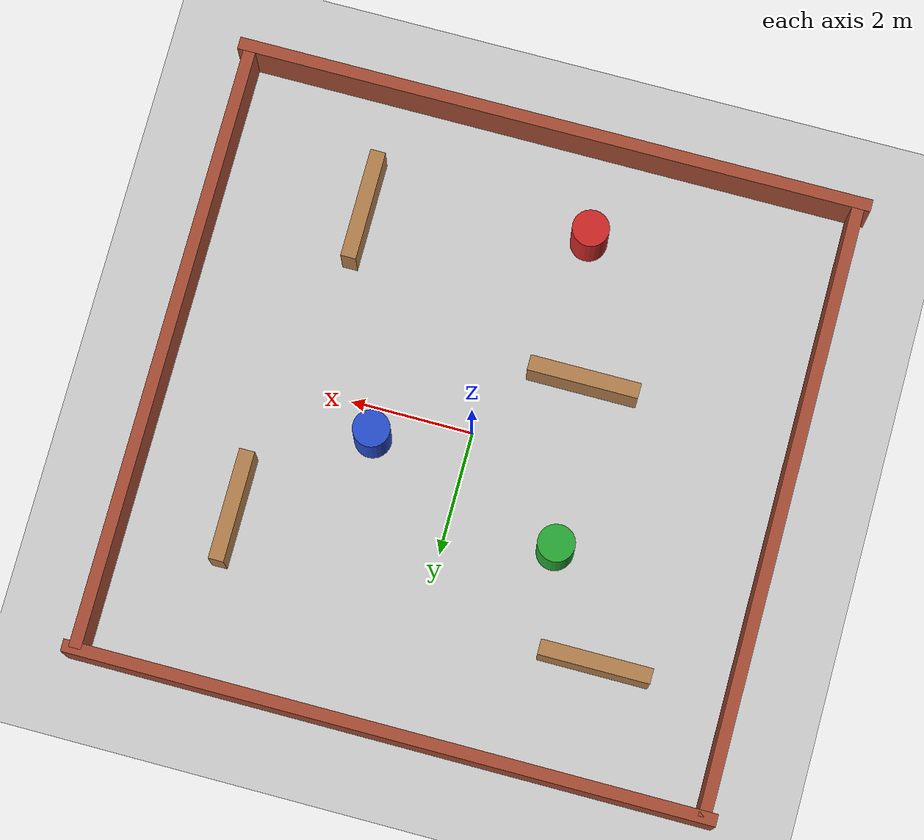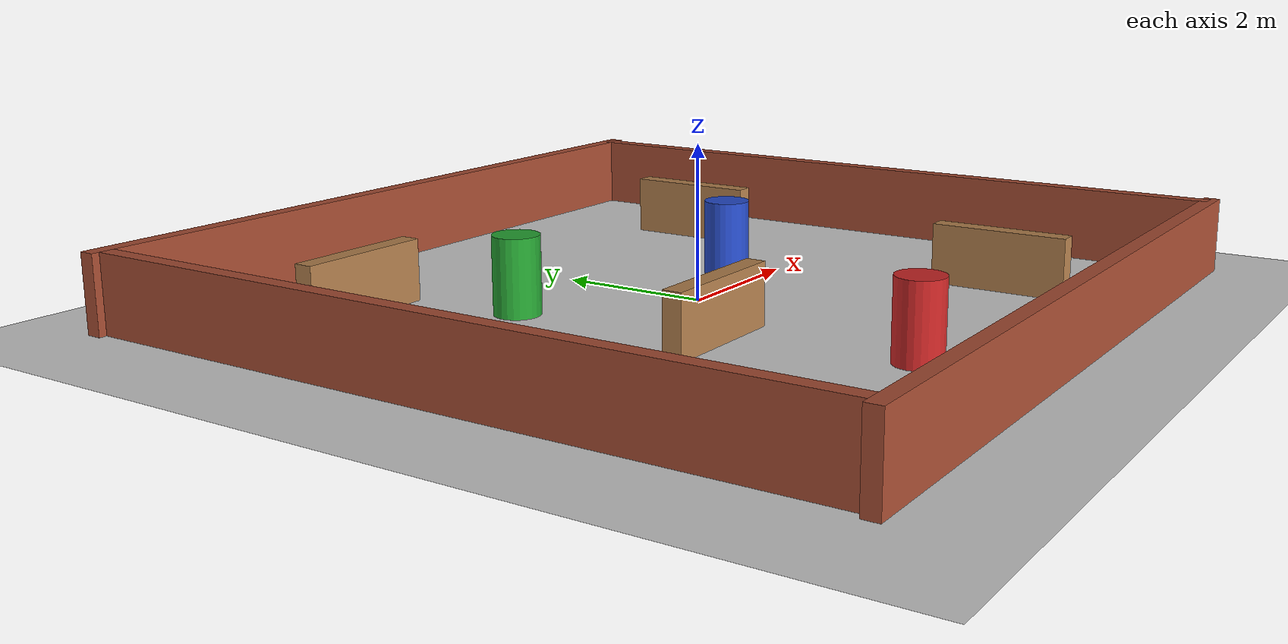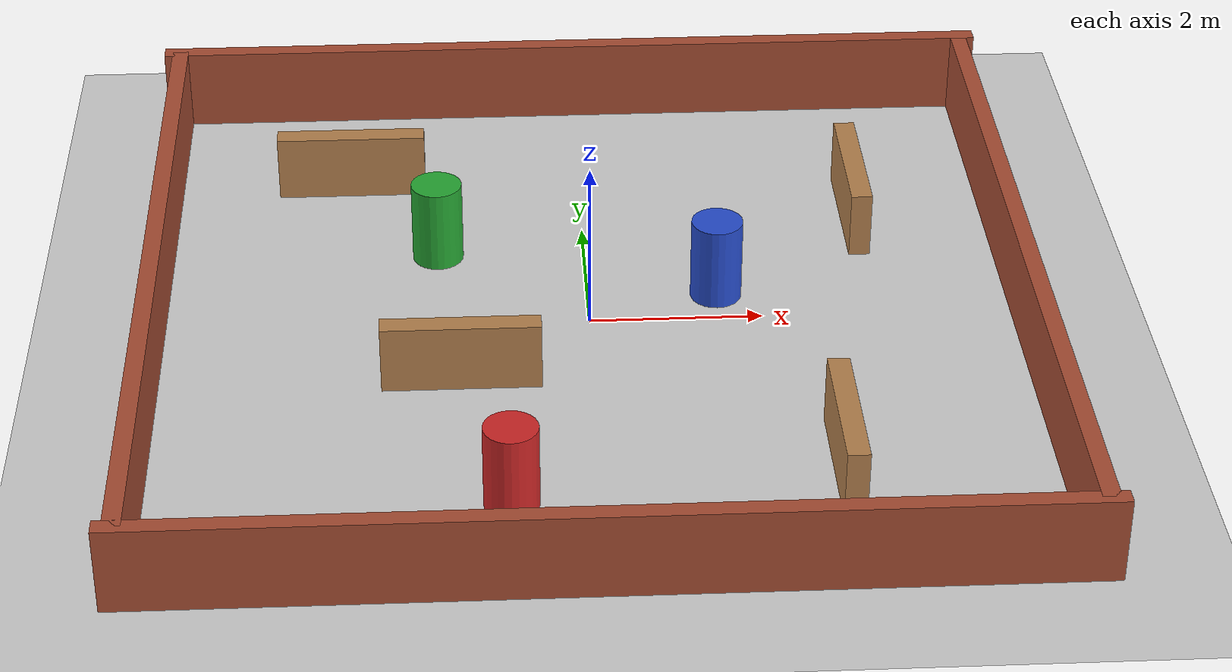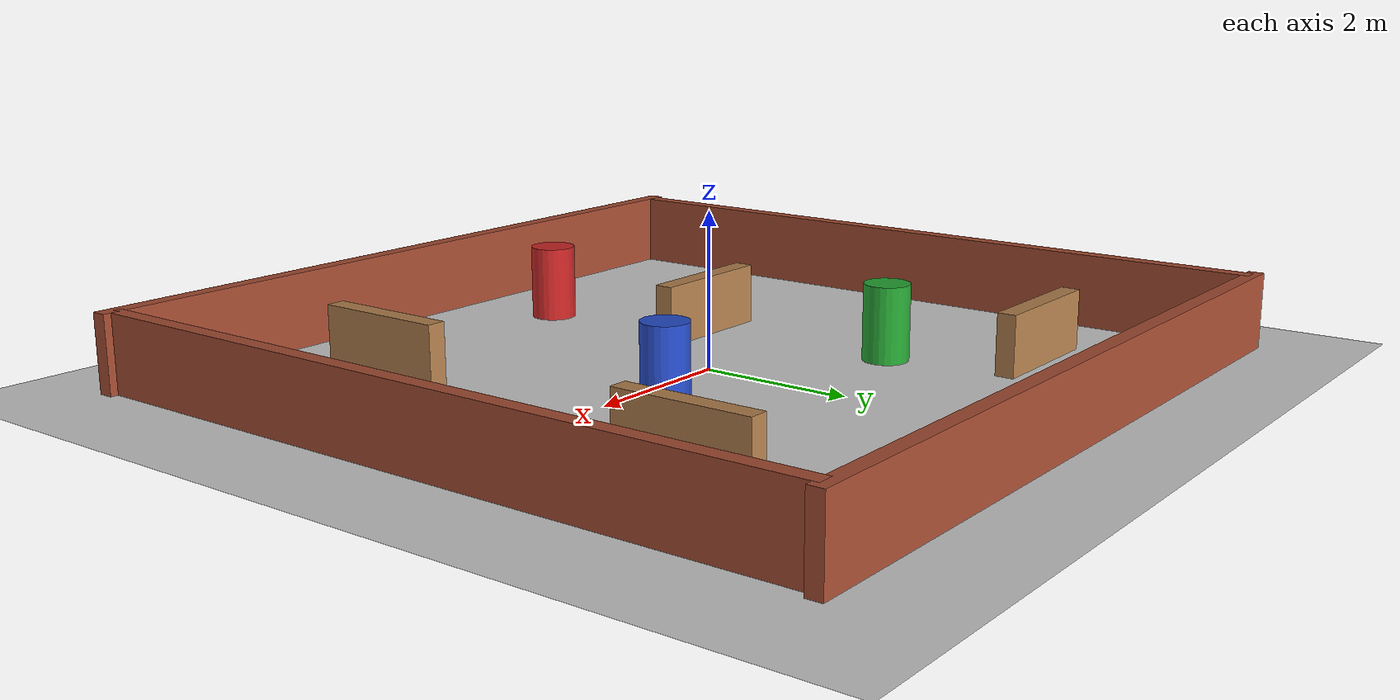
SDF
<sdf version="1.6">
 <world name="warehouse_dynamic">
  <light name="sun" type="directional">
   <pose>0 0 10 0 0 0</pose>
   <diffuse>0.8 0.8 0.8 1</diffuse>
   <specular>0.2 0.2 0.2 1</specular>
   <attenuation>
    <range>1000</range>
    <constant>0.9</constant>
    <linear>0.01</linear>
    <quadratic>0.001</quadratic>
   </attenuation>
   <direction>-0.5 0.5 -1</direction>
  </light>
  <model name="ground_plane">
   <static>1</static>
   <link name="link">
    <collision name="collision">
     <geometry><plane><normal>0 0 1</normal><size>100 100</size></plane></geometry>
     <surface><friction><ode><mu>100</mu><mu2>50</mu2></ode></friction></surface>
    </collision>
    <visual name="visual">
     <cast_shadows>0</cast_shadows>
     <geometry><plane><normal>0 0 1</normal><size>100 100</size></plane></geometry>
     <material>
      <script><uri>file://media/materials/scripts/gazebo.material</uri><name>Gazebo/Grey</name></script>
     </material>
    </visual>
   </link>
  </model>
  <gravity>0 0 -9.8</gravity>
  <physics name="default_physics" default="0" type="ode">
   <max_step_size>0.001</max_step_size>
   <real_time_factor>1</real_time_factor>
   <real_time_update_rate>1000</real_time_update_rate>
  </physics>
  <scene><ambient>0.4 0.4 0.4 1</ambient><background>0.7 0.7 0.7 1</background><shadows>1</shadows></scene>
  <model name="outer_walls">
   <static>1</static>
   <link name="wall_north">
    <pose>0 5.0 0.5 0 0 0</pose>
    <visual name="v">
     <geometry><box><size>10.4 0.2 1.0</size></box></geometry>
     <material>
      <script><uri>file://media/materials/scripts/gazebo.material</uri><name>Gazebo/Bricks</name></script>
     </material>
    </visual>
    <collision name="c"><geometry><box><size>10.4 0.2 1.0</size></box></geometry></collision>
   </link>
   <link name="wall_south">
    <pose>0 -5.0 0.5 0 0 0</pose>
    <visual name="v">
     <geometry><box><size>10.4 0.2 1.0</size></box></geometry>
     <material>
      <script><uri>file://media/materials/scripts/gazebo.material</uri><name>Gazebo/Bricks</name></script>
     </material>
    </visual>
    <collision name="c"><geometry><box><size>10.4 0.2 1.0</size></box></geometry></collision>
   </link>
   <link name="wall_east">
    <pose>5.0 0 0.5 0 0 0</pose>
    <visual name="v">
     <geometry><box><size>0.2 10.0 1.0</size></box></geometry>
     <material>
      <script><uri>file://media/materials/scripts/gazebo.material</uri><name>Gazebo/Bricks</name></script>
     </material>
    </visual>
    <collision name="c"><geometry><box><size>0.2 10.0 1.0</size></box></geometry></collision>
   </link>
   <link name="wall_west">
    <pose>-5.0 0 0.5 0 0 0</pose>
    <visual name="v">
     <geometry><box><size>0.2 10.0 1.0</size></box></geometry>
     <material>
      <script><uri>file://media/materials/scripts/gazebo.material</uri><name>Gazebo/Bricks</name></script>
     </material>
    </visual>
    <collision name="c"><geometry><box><size>0.2 10.0 1.0</size></box></geometry></collision>
   </link>
  </model>
  <model name="shelf_a">
   <static>1</static>
   <pose>-2.8 3.1 0.4 0 0 0</pose>
   <link name="link">
    <visual name="v">
     <geometry><box><size>1.8 0.25 0.8</size></box></geometry>
     <material>
      <script><uri>file://media/materials/scripts/gazebo.material</uri><name>Gazebo/WoodFloor</name></script>
     </material>
    </visual>
    <collision name="c"><geometry><box><size>1.8 0.25 0.8</size></box></geometry></collision>
   </link>
  </model>
  <model name="shelf_b">
   <static>1</static>
   <pose>3.3 2.2 0.4 0 0 1.5708</pose>
   <link name="link">
    <visual name="v">
     <geometry><box><size>1.8 0.25 0.8</size></box></geometry>
     <material>
      <script><uri>file://media/materials/scripts/gazebo.material</uri><name>Gazebo/WoodFloor</name></script>
     </material>
    </visual>
    <collision name="c"><geometry><box><size>1.8 0.25 0.8</size></box></geometry></collision>
   </link>
  </model>
  <model name="shelf_c">
   <static>1</static>
   <pose>-1.5 -1.2 0.4 0 0 0</pose>
   <link name="link">
    <visual name="v">
     <geometry><box><size>1.8 0.25 0.8</size></box></geometry>
     <material>
      <script><uri>file://media/materials/scripts/gazebo.material</uri><name>Gazebo/WoodFloor</name></script>
     </material>
    </visual>
    <collision name="c"><geometry><box><size>1.8 0.25 0.8</size></box></geometry></collision>
   </link>
  </model>
  <model name="shelf_d">
   <static>1</static>
   <pose>2.6 -3.0 0.4 0 0 1.5708</pose>
   <link name="link">
    <visual name="v">
     <geometry><box><size>1.8 0.25 0.8</size></box></geometry>
     <material>
      <script><uri>file://media/materials/scripts/gazebo.material</uri><name>Gazebo/WoodFloor</name></script>
     </material>
    </visual>
    <collision name="c"><geometry><box><size>1.8 0.25 0.8</size></box></geometry></collision>
   </link>
  </model>
  <model name="moving_red">
   <pose>-1.0 -3.5 0.5 0 0 0</pose>
   <link name="body">
    <visual name="visual">
     <geometry><cylinder><radius>0.3</radius><length>1.0</length></cylinder></geometry>
     <material>
      <script><uri>file://media/materials/scripts/gazebo.material</uri><name>Gazebo/Red</name></script>
     </material>
    </visual>
    <collision name="collision">
     <geometry><cylinder><radius>0.3</radius><length>1.0</length></cylinder></geometry>
    </collision>
   </link>
   <joint name="red_joint" type="prismatic">
    <parent>world</parent>
    <child>body</child>
    <axis><xyz>1 0 0</xyz></axis>
    <limit><lower>-3.5</lower><upper>1.5</upper></limit>
   </joint>
   <plugin name="red_mover" filename="librotating_wall_plugin.so">
    <joint_name>red_joint</joint_name>
    <amplitude>2.5</amplitude>
    <speed>0.4</speed>
   </plugin>
  </model>
  <model name="moving_blue">
   <pose>1.5 0.5 0.5 0 0 0</pose>
   <link name="body">
    <visual name="visual">
     <geometry><cylinder><radius>0.3</radius><length>1.0</length></cylinder></geometry>
     <material>
      <script><uri>file://media/materials/scripts/gazebo.material</uri><name>Gazebo/Blue</name></script>
     </material>
    </visual>
    <collision name="collision">
     <geometry><cylinder><radius>0.3</radius><length>1.0</length></cylinder></geometry>
    </collision>
   </link>
   <joint name="blue_joint" type="prismatic">
    <parent>world</parent>
    <child>body</child>
    <axis><xyz>0 1 0</xyz></axis>
    <limit><lower>-2.5</lower><upper>3.5</upper></limit>
   </joint>
   <plugin name="blue_mover" filename="librotating_wall_plugin.so">
    <joint_name>blue_joint</joint_name>
    <amplitude>3.0</amplitude>
    <speed>0.4</speed>
   </plugin>
  </model>
  <model name="moving_green">
   <pose>-1.75 1.5 0.5 0 0 0</pose>
   <link name="body">
    <visual name="visual">
     <geometry><cylinder><radius>0.3</radius><length>1.0</length></cylinder></geometry>
     <material>
      <script><uri>file://media/materials/scripts/gazebo.material</uri><name>Gazebo/Green</name></script>
     </material>
    </visual>
    <collision name="collision">
     <geometry><cylinder><radius>0.3</radius><length>1.0</length></cylinder></geometry>
    </collision>
   </link>
   <joint name="green_joint" type="prismatic">
    <parent>world</parent>
    <child>body</child>
    <axis><xyz>1 0 0</xyz></axis>
    <limit><lower>-4.0</lower><upper>0.5</upper></limit>
   </joint>
   <plugin name="green_mover" filename="librotating_wall_plugin.so">
    <joint_name>green_joint</joint_name>
    <amplitude>2.25</amplitude>
    <speed>0.35</speed>
   </plugin>
  </model>
 </world>
</sdf>
